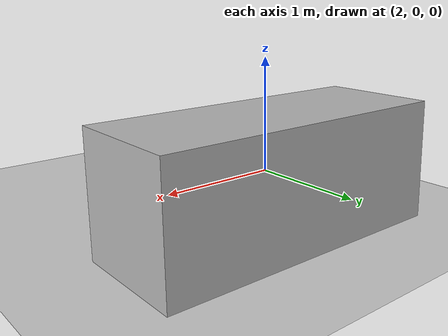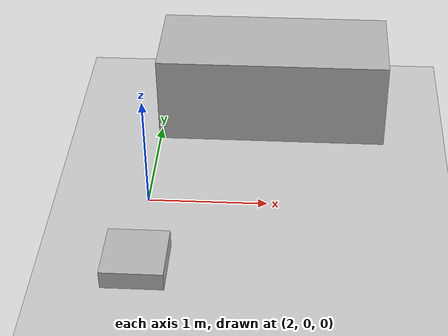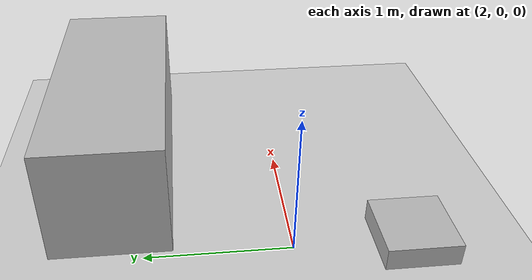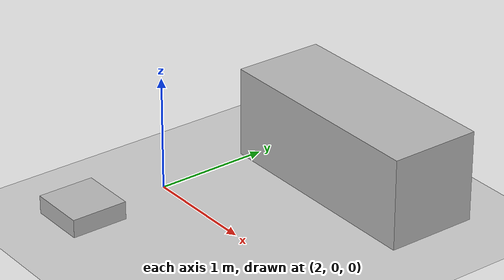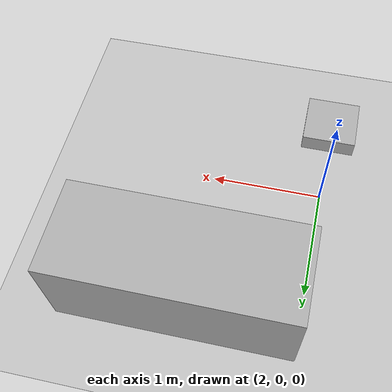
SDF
<?xml version="1.0"?>
<sdf version="1.9"><world name="home_environment"><plugin filename="gz-sim-physics-system" name="gz::sim::systems::Physics"/><plugin filename="gz-sim-scene-broadcaster-system" name="gz::sim::systems::SceneBroadcaster"/><include><uri>model://sun</uri></include><include><uri>model://ground_plane</uri></include><model name="sofa"><static>true</static><pose>3 1.2 0.45 0 0 0</pose><link name="link"><collision name="c"><geometry><box><size>2 0.8 0.8</size></box></geometry></collision><visual name="v"><geometry><box><size>2 0.8 0.8</size></box></geometry></visual></link></model><model name="low_height_obstacle"><static>true</static><pose>2 -0.8 0.08 0 0 0</pose><link name="link"><collision name="c"><geometry><box><size>0.5 0.5 0.16</size></box></geometry></collision><visual name="v"><geometry><box><size>0.5 0.5 0.16</size></box></geometry></visual></link></model></world></sdf>
